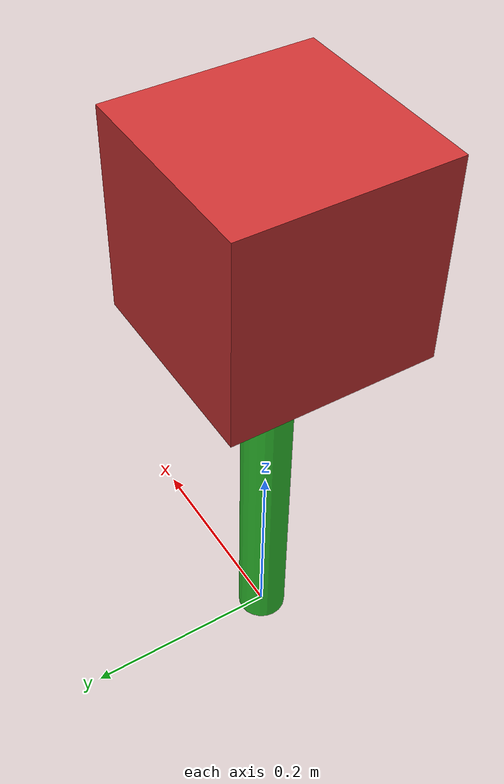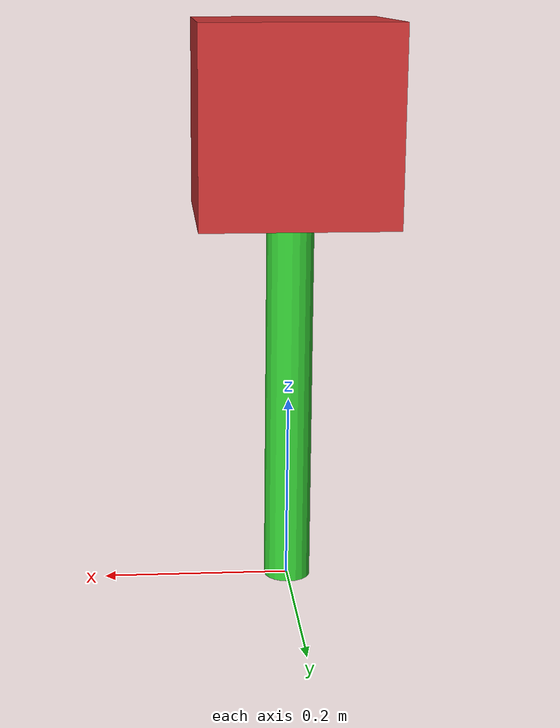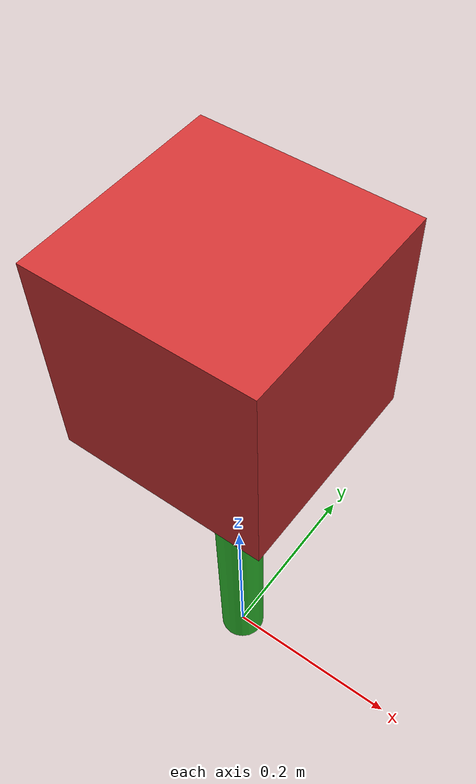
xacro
<?xml version="1.0"?>
<robot xmlns:xacro="http://ros.org/wiki/xacro" name="monopod">

  <!-- Define parameter -->
  <xacro:property name="base_color_rgba" value="0.8 0.2 0.2 1.0"/>
  <xacro:property name="leg_color_rgba" value="0.2 0.8 0.2 1.0"/>

  <!-- Cube base -->
  <link name="base_link">
    <inertial>
      <origin xyz="0 0 0.5" rpy="0 0 0"/>
      <mass value="2.0"/>
      <inertia
        ixx="0.0133" iyy="0.0133" izz="0.0133"
        ixy="0.0" ixz="0.0" iyz="0.0"/>
    </inertial>
    <visual>
      <origin xyz="0 0 0.5" rpy="0 0 0"/>
      <geometry>
        <mesh filename="package://meshes/cube_body.dae" />
      </geometry>
      <material name="base_color">
        <color rgba="${base_color_rgba}"/>
      </material>
    </visual>
    <collision>
      <origin xyz="0 0 0.5" rpy="0 0 0"/>
      <geometry>
        <mesh filename="package://meshes/cube_body.dae" />
      </geometry>
    </collision>
  </link>

  <!-- Joint 1: Pitch (X-axis) -->
  <joint name="joint_pitch" type="revolute">
    <parent link="base_link"/>
    <child link="intermediate_link"/>
    <origin xyz="0 0 -0.1" rpy="0 0 0"/>
    <axis xyz="1 0 0"/>
    <limit effort="10" velocity="1.0" lower="-1.57" upper="1.57"/>
  </joint>

  <!-- Intermediate link for universal joint -->
  <link name="intermediate_link">
    <inertial>
      <origin xyz="0 0 0" rpy="0 0 0"/>
      <mass value="0.001"/>
      <inertia ixx="1e-6" iyy="1e-6" izz="1e-6" ixy="0" ixz="0" iyz="0"/>
    </inertial>
  </link>

  <!-- Joint 2: Roll (Y-axis) -->
  <joint name="joint_roll" type="revolute">
    <parent link="intermediate_link"/>
    <child link="leg_link"/>
    <origin xyz="0 0 0" rpy="0 0 0"/>
    <axis xyz="0 1 0"/>
    <limit effort="10" velocity="1.0" lower="-1.57" upper="1.57"/>
  </joint>

  <!-- Cylindrical leg -->
  <link name="leg_link">
    <inertial>
      <origin xyz="0 0 0.1" rpy="0 0 0"/>
      <mass value="1.0"/>
      <inertia
        ixx="0.00104" iyy="0.00104" izz="0.00005"
        ixy="0.0" ixz="0.0" iyz="0.0"/>
    </inertial>
    <visual>
      <origin xyz="0 0 0.1" rpy="0 0 0"/>
      <geometry>
        <mesh filename="package://meshes/cylindrical_leg.dae" />
      </geometry>
      <material name="leg_color">
        <color rgba="${leg_color_rgba}"/>
      </material>
    </visual>
    <collision>
      <origin xyz="0 0 0.1" rpy="0 0 0"/>
      <geometry>
        <mesh filename="package://meshes/cylindrical_leg.dae" />
      </geometry>
    </collision>
  </link>

</robot>
